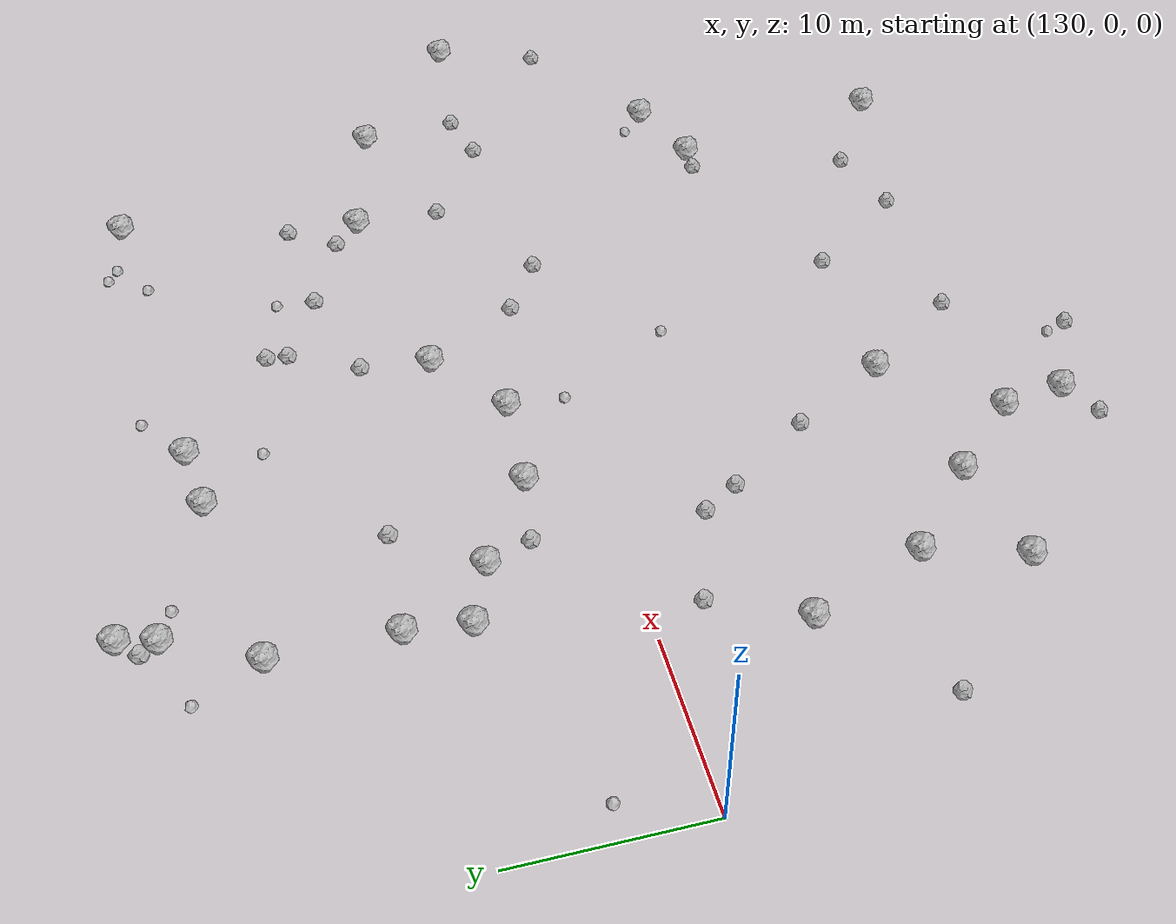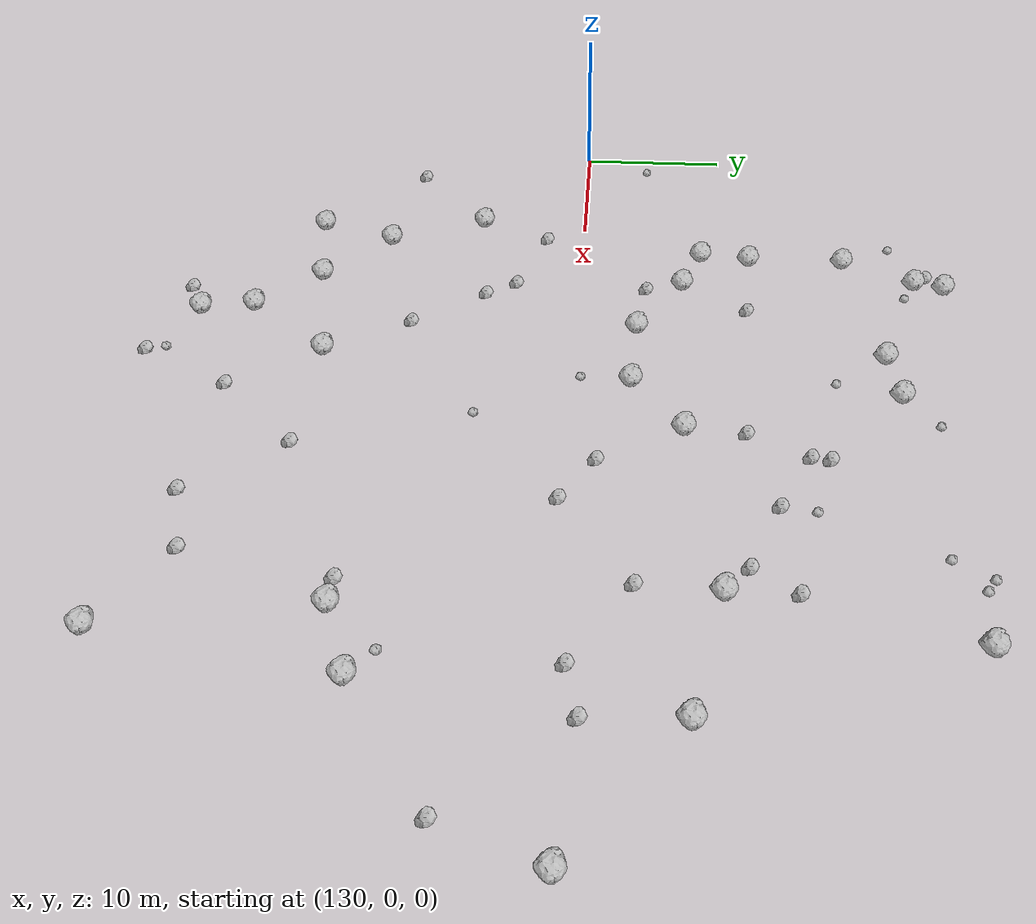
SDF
<sdf version="1.6">
 <world name="default">
  <include><uri>model://sun</uri></include>
  <model name="rock1_4_2">
   <include><uri>model://rock1</uri><pose>157.60789174504504 20.058559618261228 0.5 0 0 0</pose></include>
  </model>
  <model name="rock1_4_3">
   <include><uri>model://rock1</uri><pose>161.18211179124535 6.605012106863853 0.5 0 0 0</pose></include>
  </model>
  <model name="rock1_4_4">
   <include><uri>model://rock1</uri><pose>146.21045782080296 24.531912952971403 0.5 0 0 0</pose></include>
  </model>
  <model name="rock1_4_5">
   <include><uri>model://rock1</uri><pose>173.74027752743558 8.387829142494091 0.5 0 0 0</pose></include>
  </model>
  <model name="rock1_4_6">
   <include><uri>model://rock1</uri><pose>156.87817567408436 3.407285437841253 0.5 0 0 0</pose></include>
  </model>
  <model name="rock1_4_7">
   <include><uri>model://rock1</uri><pose>151.46070976365036 3.7554290507521983 0.5 0 0 0</pose></include>
  </model>
  <model name="rock1_4_8">
   <include><uri>model://rock1</uri><pose>176.66210181869613 21.652198909399672 0.5 0 0 0</pose></include>
  </model>
  <model name="rock1_4_9">
   <include><uri>model://rock1</uri><pose>175.5603483320354 -12.127639127349909 0.5 0 0 0</pose></include>
  </model>
  <model name="rock1_4_10">
   <include><uri>model://rock1</uri><pose>145.75777485449362 22.59573301106102 0.5 0 0 0</pose></include>
  </model>
  <model name="rock1_4_11">
   <include><uri>model://rock1</uri><pose>179.98835259250376 -10.474924399043143 0.5 0 0 0</pose></include>
  </model>
  <model name="rock1_4_12">
   <include><uri>model://rock1</uri><pose>150.80629682331872 -25.27215997276545 0.5 0 0 0</pose></include>
  </model>
  <model name="rock1_4_13">
   <include><uri>model://rock1</uri><pose>143.43359116632908 11.524136163496536 0.5 0 0 0</pose></include>
  </model>
  <model name="rock1_4_14">
   <include><uri>model://rock1</uri><pose>153.8754551800162 19.588621370257478 0.5 0 0 0</pose></include>
  </model>
  <model name="rock1_4_15">
   <include><uri>model://rock1</uri><pose>177.61495738589434 -24.24307782663015 0.5 0 0 0</pose></include>
  </model>
  <model name="rock1_4_16">
   <include><uri>model://rock1</uri><pose>154.74107120370397 -16.33956237225828 0.5 0 0 0</pose></include>
  </model>
  <model name="rock1_4_17">
   <include><uri>model://rock1</uri><pose>146.54922542460844 -17.887143931969653 0.5 0 0 0</pose></include>
  </model>
  <model name="rock1_4_18">
   <include><uri>model://rock1</uri><pose>189.6029386868289 0.22885032430416885 0.5 0 0 0</pose></include>
  </model>
  <model name="rock1_4_19">
   <include><uri>model://rock1</uri><pose>181.65911343155514 6.4723949471592235 0.5 0 0 0</pose></include>
  </model>
  <model name="rock1_4_20">
   <include><uri>model://rock1</uri><pose>142.033079072268 -13.759289703348315 0.5 0 0 0</pose></include>
  </model>
  <model name="rock1_4_21">
   <include><uri>model://rock1</uri><pose>143.0710573936216 8.209400188862539 0.5 0 0 0</pose></include>
  </model>
  <model name="rock1_4_22">
   <include><uri>model://rock1</uri><pose>143.44864176032152 18.008179894511237 0.5 0 0 0</pose></include>
  </model>
  <model name="rock1_4_23">
   <include><uri>model://rock1</uri><pose>146.52642789392848 6.840763855574245 0.5 0 0 0</pose></include>
  </model>
  <model name="rock1_4_24">
   <include><uri>model://rock1</uri><pose>140.39910026842682 -18.86450334024388 0.5 0 0 0</pose></include>
  </model>
  <model name="rock1_4_25">
   <include><uri>model://rock1</uri><pose>150.27054871020562 -21.804975819639303 0.5 0 0 0</pose></include>
  </model>
  <model name="rock1_4_26">
   <include><uri>model://rock1</uri><pose>139.43969826417384 -7.354077211985 0.5 0 0 0</pose></include>
  </model>
  <model name="rock2_4_0">
   <include><uri>model://rock2</uri><pose>147.03906322359728 -4.438460357746962 0.3 0 0 0</pose></include>
  </model>
  <model name="rock2_4_1">
   <include><uri>model://rock2</uri><pose>164.18552162074343 1.4518883822038404 0.3 0 0 0</pose></include>
  </model>
  <model name="rock2_4_2">
   <include><uri>model://rock2</uri><pose>172.08849604123634 9.84479019435556 0.3 0 0 0</pose></include>
  </model>
  <model name="rock2_4_3">
   <include><uri>model://rock2</uri><pose>167.4897685851181 11.831224037326344 0.3 0 0 0</pose></include>
  </model>
  <model name="rock2_4_4">
   <include><uri>model://rock2</uri><pose>149.43521337345504 11.053027785606254 0.3 0 0 0</pose></include>
  </model>
  <model name="rock2_4_5">
   <include><uri>model://rock2</uri><pose>163.5721976757923 -16.574115173669203 0.3 0 0 0</pose></include>
  </model>
  <model name="rock2_4_6">
   <include><uri>model://rock2</uri><pose>181.87541090617987 1.0817025669588247 0.3 0 0 0</pose></include>
  </model>
  <model name="rock2_4_7">
   <include><uri>model://rock2</uri><pose>178.78571092173644 0.3429667459820891 0.3 0 0 0</pose></include>
  </model>
  <model name="rock2_4_8">
   <include><uri>model://rock2</uri><pose>172.15579553891874 -20.880771256028154 0.3 0 0 0</pose></include>
  </model>
  <model name="rock2_4_9">
   <include><uri>model://rock2</uri><pose>158.53179189002893 -21.73939775860244 0.3 0 0 0</pose></include>
  </model>
  <model name="rock2_4_10">
   <include><uri>model://rock2</uri><pose>155.3764084919078 -27.648393727603768 0.3 0 0 0</pose></include>
  </model>
  <model name="rock2_4_11">
   <include><uri>model://rock2</uri><pose>148.52732977212833 -26.419367628086455 0.3 0 0 0</pose></include>
  </model>
  <model name="rock2_4_12">
   <include><uri>model://rock2</uri><pose>145.11634774400378 23.493453513151614 0.3 0 0 0</pose></include>
  </model>
  <model name="rock2_4_13">
   <include><uri>model://rock2</uri><pose>173.77536126096683 12.358631466306335 0.3 0 0 0</pose></include>
  </model>
  <model name="rock2_4_14">
   <include><uri>model://rock2</uri><pose>167.42455866401784 -0.5946210492920798 0.3 0 0 0</pose></include>
  </model>
  <model name="rock2_4_15">
   <include><uri>model://rock2</uri><pose>163.55968857349686 15.059930421524342 0.3 0 0 0</pose></include>
  </model>
  <model name="rock2_4_16">
   <include><uri>model://rock2</uri><pose>173.86623715724912 -12.044133012836802 0.3 0 0 0</pose></include>
  </model>
  <model name="rock2_4_17">
   <include><uri>model://rock2</uri><pose>147.35957327198366 4.38465569368379 0.3 0 0 0</pose></include>
  </model>
  <model name="rock2_4_18">
   <include><uri>model://rock2</uri><pose>163.43914202772004 13.925457516500543 0.3 0 0 0</pose></include>
  </model>
  <model name="rock2_4_19">
   <include><uri>model://rock2</uri><pose>187.44843390250284 -5.3752073498136745 0.3 0 0 0</pose></include>
  </model>
  <model name="rock2_4_20">
   <include><uri>model://rock2</uri><pose>173.50493724228235 3.689969798644263 0.3 0 0 0</pose></include>
  </model>
  <model name="rock2_4_21">
   <include><uri>model://rock2</uri><pose>167.79436868629662 -22.11503813503641 0.3 0 0 0</pose></include>
  </model>
  <model name="rock2_4_22">
   <include><uri>model://rock2</uri><pose>133.55087987446558 -12.388312603014576 0.3 0 0 0</pose></include>
  </model>
  <model name="rock2_4_23">
   <include><uri>model://rock2</uri><pose>148.32519613511496 -6.410858460749541 0.3 0 0 0</pose></include>
  </model>
  <model name="rock2_4_24">
   <include><uri>model://rock2</uri><pose>151.63826952108542 -11.024239425922751 0.3 0 0 0</pose></include>
  </model>
  <model name="rock2_4_25">
   <include><uri>model://rock2</uri><pose>141.6290698011266 -2.6351624288358977 0.3 0 0 0</pose></include>
  </model>
  <model name="rock2_4_26">
   <include><uri>model://rock2</uri><pose>161.54632004555233 10.313193645783642 0.3 0 0 0</pose></include>
  </model>
  <model name="rock3_4_0">
   <include><uri>model://rock3</uri><pose>170.85227518038647 20.630585407629184 0.2 0 0 0</pose></include>
  </model>
  <model name="rock3_4_1">
   <include><uri>model://rock3</uri><pose>156.56272585122093 16.166424070973903 0.2 0 0 0</pose></include>
  </model>
  <model name="rock3_4_2">
   <include><uri>model://rock3</uri><pose>160.21113381318264 21.981305479511903 0.2 0 0 0</pose></include>
  </model>
  <model name="rock3_4_3">
   <include><uri>model://rock3</uri><pose>178.33140365294932 -9.123728402517916 0.2 0 0 0</pose></include>
  </model>
  <model name="rock3_4_4">
   <include><uri>model://rock3</uri><pose>147.37451543846086 21.766926212588537 0.2 0 0 0</pose></include>
  </model>
  <model name="rock3_4_5">
   <include><uri>model://rock3</uri><pose>172.16077940003728 22.70346784147894 0.2 0 0 0</pose></include>
  </model>
  <model name="rock3_4_6">
   <include><uri>model://rock3</uri><pose>131.85542305860784 4.4864371772876055 0.2 0 0 0</pose></include>
  </model>
  <model name="rock3_4_7">
   <include><uri>model://rock3</uri><pose>156.6293136682627 0.2672375283457029 0.2 0 0 0</pose></include>
  </model>
  <model name="rock3_4_8">
   <include><uri>model://rock3</uri><pose>141.62611728385886 21.473000156814315 0.2 0 0 0</pose></include>
  </model>
  <model name="rock3_4_9">
   <include><uri>model://rock3</uri><pose>172.96518417467618 22.144285958236253 0.2 0 0 0</pose></include>
  </model>
  <model name="rock3_4_10">
   <include><uri>model://rock3</uri><pose>154.94156787415793 -26.478022420168582 0.2 0 0 0</pose></include>
  </model>
  <model name="rock3_4_11">
   <include><uri>model://rock3</uri><pose>160.32535311631432 -6.095983526331185 0.2 0 0 0</pose></include>
  </model>
  <model name="rock3_4_12">
   <include><uri>model://rock3</uri><pose>167.68170562249188 13.872723629272805 0.2 0 0 0</pose></include>
  </model>
 </world>
</sdf>
